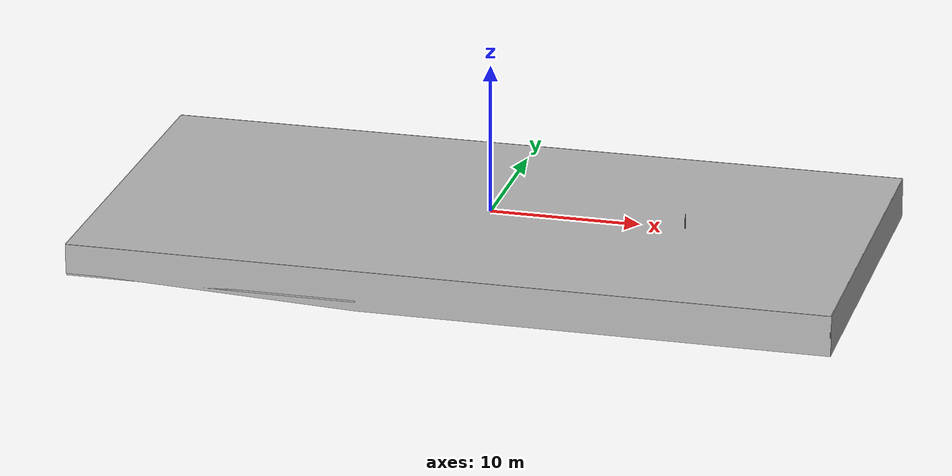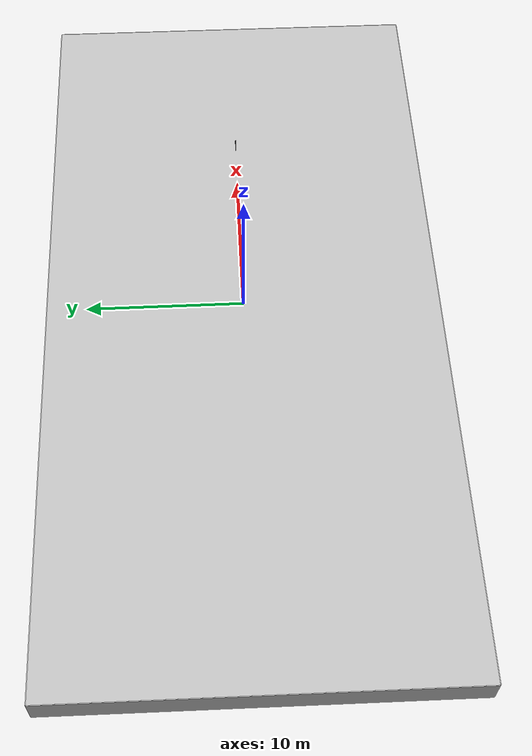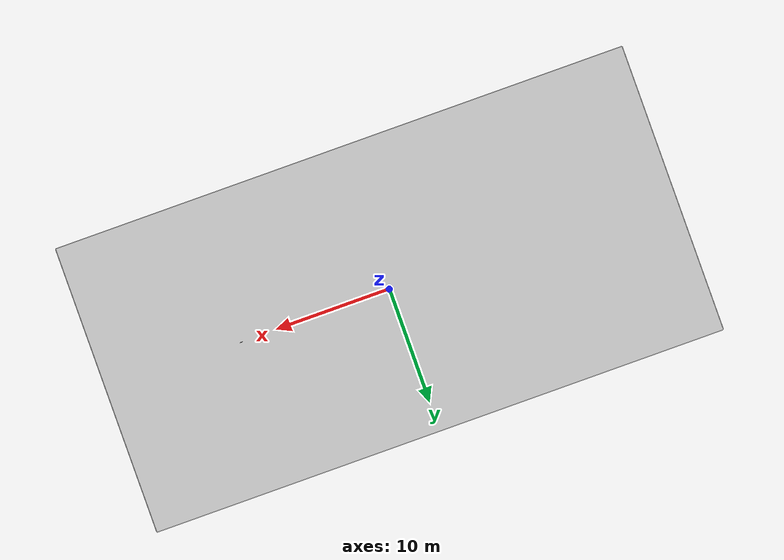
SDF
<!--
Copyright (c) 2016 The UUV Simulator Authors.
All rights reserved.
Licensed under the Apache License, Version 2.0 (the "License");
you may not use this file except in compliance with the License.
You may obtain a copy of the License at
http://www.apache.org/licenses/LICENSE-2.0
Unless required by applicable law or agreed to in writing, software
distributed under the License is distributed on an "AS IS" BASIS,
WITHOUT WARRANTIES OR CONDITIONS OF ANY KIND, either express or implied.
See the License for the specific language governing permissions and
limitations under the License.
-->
<?xml version="1.0"?>
<!-- Modified for different Gazebo GUI camera angle -->

<sdf version="1.4">
  <world name="sauvc_2024">
    <scene>
      <ambient>0.01 0.01 0.01 1.0</ambient>
      <sky>
        <clouds>
          <speed>12</speed>
        </clouds>
      </sky>
      <shadows>1</shadows>
    </scene>
    <physics name="1ms" type="ignored">
      <max_step_size>0.001</max_step_size>
      <real_time_factor>1.0</real_time_factor>
    </physics>
    <plugin
      filename="gz-sim-physics-system"
      name="gz::sim::systems::Physics">
    </plugin>
    <plugin
      filename="gz-sim-user-commands-system"
      name="gz::sim::systems::UserCommands">
    </plugin>
    <plugin
      filename="gz-sim-scene-broadcaster-system"
      name="gz::sim::systems::SceneBroadcaster">
    </plugin>
    <plugin
      filename="gz-sim-sensors-system"
      name="gz::sim::systems::Sensors">
      <render_engine>ogre2</render_engine>
    </plugin>
    <plugin
      filename="gz-sim-dvl-system"
      name="gz::sim::systems::DopplerVelocityLogSystem">
    </plugin>
    <!-- multibeam_sonar_system requires CUDA; omitted for CPU-only builds -->

    <!-- Origin placed at Singapore Poly Swimming Pool  -->
    <spherical_coordinates>
      <surface_model>EARTH_WGS84</surface_model>
      <world_frame_orientation>ENU</world_frame_orientation>
      <latitude_deg>1.309562</latitude_deg>
      <longitude_deg>103.7745783</longitude_deg>
      <elevation>0.0</elevation>
      <heading_deg>0.0</heading_deg>
    </spherical_coordinates>

    <!-- Global light source -->
    <light type="directional" name="sun1">
      <pose>50 0 150 0 0 0</pose>
      <diffuse>1 1 1 1</diffuse>
      <specular>.1 .1 .1 1</specular>
      <direction>0.3 0.3 -1</direction>
      <cast_shadows>false</cast_shadows>
    </light>

    <light type="directional" name="sun_diffuse">
      <pose>-50 0 -150 0 0 0</pose>
      <diffuse>0.6 0.6 0.6 1</diffuse>
      <specular>0 0 0 1</specular>
      <direction>-0.3 -0.3 -1</direction>
      <cast_shadows>false</cast_shadows>
    </light>

    <light type="directional" name="sun_diffuse_1">
      <pose>-100 500 -20 0 0 0</pose>
      <diffuse>0.8 0.8 0.8 1</diffuse>
      <specular>1 1 1 1</specular>
      <direction>-1 -1 0</direction>
      <cast_shadows>false</cast_shadows>
    </light>

    <light type="directional" name="sun_diffuse_2">
      <pose>-150 -130 50 0 0 0</pose>
      <diffuse>0.6 0.6 0.6 1</diffuse>
      <specular>0.2 0.2 0.2 1</specular>
      <direction>0.5 0.5 -1</direction>
      <cast_shadows>false</cast_shadows>
    </light>

		<!-- Virtual north, east and down frame -->

    <!-- Sea surface -->

    <!-- Heightmap -->

    <include>
      <uri>model://sp_swimming_pool</uri>
      <pose>0 0 0 0 0 0</pose>
    </include>

    <include>
      <name>surface</name>
			<uri>model://pool_waves</uri>
      <pose>0 0 0 0 0 0</pose>
		</include>

    <include>
      <name>prequali_task</name>
      <uri>model://robosub25/prequali_task</uri>
      <pose>3 0 -2 0 0 0</pose>
    </include>

    <plugin
      filename="gz-sim-buoyancy-system"
      name="gz::sim::systems::Buoyancy">
      <graded_buoyancy>
        <default_density>1000</default_density>
        <density_change>
          <above_depth>0</above_depth>
          <density>1</density>
        </density_change>
      </graded_buoyancy>
    </plugin>

  </world>
</sdf>

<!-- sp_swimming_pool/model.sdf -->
<sdf version="1.11">
  <model name="sp_swimming_pool">
    <static>true</static>
    <link name="link">

      <visual name="pool">
        <pose>0 0 0 0 0 0</pose>
        <geometry>
          <mesh>
            <!-- The URI should refer to the 3D mesh. The "model:"
                URI scheme indicates that the we are referencing a Gazebo
                model. -->
            <uri>model://sp_swimming_pool/meshes/sppool.dae</uri>
          </mesh>
        </geometry>
      </visual>

      <collision name="pool_collision">
        <pose>0 0 0 0 0 0</pose>
        <geometry>
          <mesh>
            <uri>model://sp_swimming_pool/meshes/sppool.stl</uri>
          </mesh>
        </geometry>
      </collision>
      <collision name="pool_base">
        <pose>0 0 -2.05 0 0 0</pose>
        <geometry>
          <box>
            <size>50 25 0.1</size>
          </box>
        </geometry>
      </collision>
    </link>
  </model>
</sdf>

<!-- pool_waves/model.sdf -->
<sdf version="1.6">
    <model name="pool_waves">
        <static>true</static>
        <link name="link">
            <visual name="visual">
                <geometry>
                    <mesh>
                        <uri>meshes/mesh1.dae</uri>
                    </mesh>
                </geometry>
                <plugin filename="gz-sim-shader-param-system" name="gz::sim::systems::ShaderParam">
                    <shader language="glsl">
                        <vertex>materials/programs/GerstnerWaves_vs_330.glsl</vertex>
                        <fragment>materials/programs/GerstnerWaves_fs_330.glsl</fragment>
                    </shader>
                    <shader language="metal">
                        <vertex>materials/programs/GerstnerWaves_vs.metal</vertex>
                        <fragment>materials/programs/GerstnerWaves_fs.metal</fragment>
                    </shader>
                    <param>
                        <shader>vertex</shader>
                        <name>Nwaves</name>
                        <type>int</type>
                        <value>3</value>
                    </param>
                    <param>
                        <shader>vertex</shader>
                        <name>rescale</name>
                        <type>float</type>
                        <value>0.5</value>
                    </param>
                    <param>
                        <shader>vertex</shader>
                        <name>bumpScale</name>
                        <type>float_array</type>
                        <value>25 25</value>
                    </param>
                    <param>
                        <shader>vertex</shader>
                        <name>bumpSpeed</name>
                        <type>float_array</type>
                        <value>0.01 0.01</value>
                    </param>
                    <param>
                        <shader>vertex</shader>
                        <name>amplitude</name>
                        <type>float_array</type>
                        <value>0.1 0.05 0.02</value>
                    </param>

                    <param>
                        <shader>vertex</shader>
                        <name>wavenumber</name>
                        <type>float_array</type>
                        <value>0.028 0.0896 0.0504</value>
                    </param>
                    <param>
                        <shader>vertex</shader>
                        <name>omega</name>
                        <type>float_array</type>
                        <value>0.5 1.7 1.0</value>
                    </param>
                    <param>
                        <shader>vertex</shader>
                        <name>dir0</name>
                        <type>float_array</type>
                        <value>-1.0 0.0</value>
                    </param>
                    <param>
                        <shader>vertex</shader>
                        <name>dir1</name>
                        <type>float_array</type>
                        <value>-0.7 0.7</value>
                    </param>
                    <param>
                        <shader>vertex</shader>
                        <name>dir2</name>
                        <type>float_array</type>
                        <value>0.7 0.7</value>
                    </param>
                    <param>
                        <shader>vertex</shader>
                        <name>steepness</name>
                        <type>float_array</type>
                        <value>1.0 1.5 0.8</value>
                    </param>
                    <param>
                        <shader>vertex</shader>
                        <name>tau</name>
                        <type>float</type>
                        <value>2.0</value>
                    </param>
                    <param>
                        <shader>vertex</shader>
                        <name>camera_position_object_space</name>
                    </param>
                    <param>
                        <shader>vertex</shader>
                        <name>worldviewproj_matrix</name>
                    </param>
                    <param>
                        <shader>vertex</shader>
                        <name>t</name>
                        <value>TIME</value>
                    </param>
                    <param>
                        <shader>fragment</shader>
                        <name>hdrMultiplier</name>
                        <type>float</type>
                        <value>0.4</value>
                    </param>
                    <param>
                        <shader>fragment</shader>
                        <name>fresnelPower</name>
                        <type>float</type>
                        <value>5.0</value>
                    </param>
                    <param>
                        <shader>fragment</shader>
                        <name>shallowColor</name>
                        <type>float_array</type>
                        <value>0.0 0.1 0.3 1.0</value>
                    </param>
                    <param>
                        <shader>fragment</shader>
                        <name>deepColor</name>
                        <type>float_array</type>
                        <value>0.0 0.05 0.02 1.0</value>
                    </param>
                    <param>
                        <shader>fragment</shader>
                        <name>cubeMap</name>
                        <type>texture_cube</type>
                        <value>materials/textures/skybox_lowres.dds</value>
                        <!-- arg: texture coord set index -->
                        <arg>1</arg>
                    </param>
                    <param>
                        <shader>fragment</shader>
                        <name>bumpMap</name>
                        <type>texture</type>
                        <value>materials/textures/wave_normals.dds</value>
                    </param>
                </plugin>
            </visual>
        </link>
    </model>
</sdf>

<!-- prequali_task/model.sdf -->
<sdf version="1.11">
  <model name="robosub25_prequali_task">
    <static>1</static>

    <link name="prequali_task">
      <pose>0 0 0 0 0 0</pose>
      <visual name="gate">
        <pose>0 0 0 1.57 0 0</pose>
        <geometry>
          <mesh>
            <uri>model://robosub25/prequali_task/gate.dae</uri>
          </mesh>
        </geometry>
      </visual>
      <collision name="gate_collision">
        <pose>0 0 0 1.57 0 0</pose>
        <geometry>
          <mesh>
            <uri>model://robosub25/prequali_task/gate.dae</uri>
          </mesh>
        </geometry>
      </collision>

      <visual name="pillar">
        <pose>10 0 0 1.57 0 0</pose>
        <geometry>
          <mesh>
            <uri>model://robosub25/prequali_task/pillar.dae</uri>
          </mesh>
        </geometry>
      </visual>
      <collision name="pillar_collision">
        <pose>10 0 0 1.57 0 0</pose>
        <geometry>
          <mesh>
            <uri>model://robosub25/prequali_task/pillar.dae</uri>
          </mesh>
        </geometry>
      </collision>
    </link>
  </model>
</sdf>
